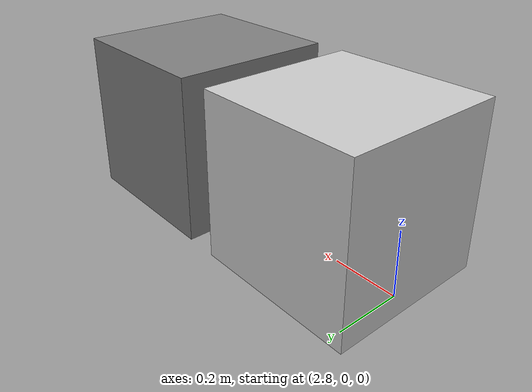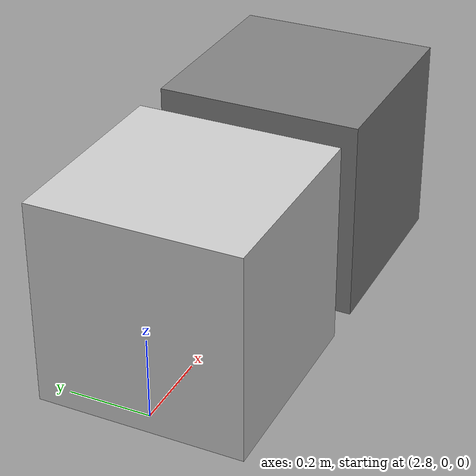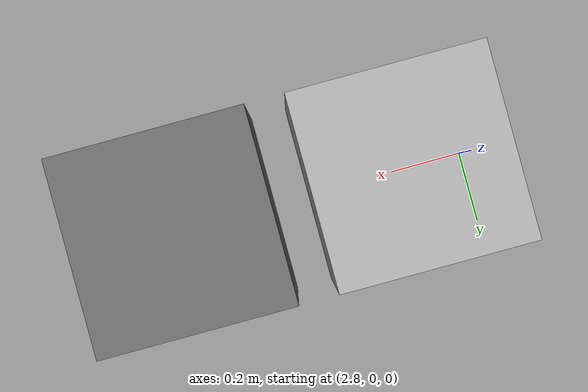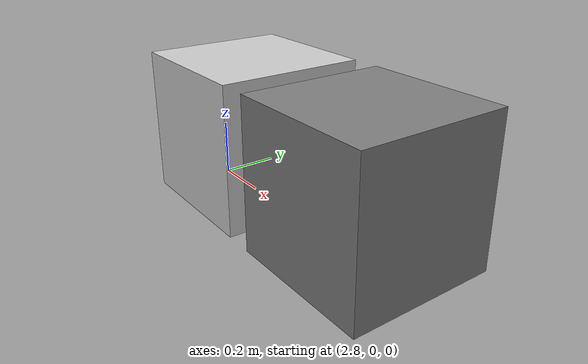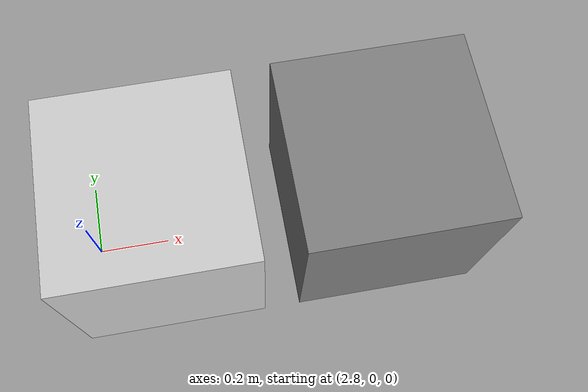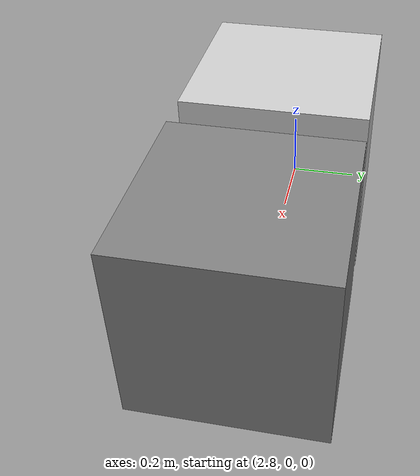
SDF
<?xml version="1.0" ?>
<sdf version="1.6">
  <world name="camera_depth_occlusion">
    <scene>
      <ambient>0.7 0.7 0.7 1</ambient>
      <background>0.5 0.5 0.5 1</background>
    </scene>

    <!-- Задний куб (неподвижный) -->
    <model name="back_cube">
      <pose>3.6 0.0 0.25 0 0 0</pose>
      <static>true</static>
      <link name="link">
        <collision name="collision">
          <geometry><box><size>0.5 0.5 0.5</size></box></geometry>
        </collision>
        <visual name="visual">
          <geometry><box><size>0.5 0.5 0.5</size></box></geometry>
          <material>
            <ambient>0.5 0.5 0.5 1</ambient>
            <diffuse>0.5 0.5 0.5 1</diffuse>
          </material>
        </visual>
      </link>
    </model>

    <!-- Передний куб (перемещаемый) -->
    <model name="front_cube">
      <pose>3.0 0.0 0.25 0 0 0</pose>
      <static>false</static>
      <link name="link">
        <gravity>false</gravity>
        <collision name="collision">
          <geometry><box><size>0.5 0.5 0.5</size></box></geometry>
        </collision>
        <visual name="visual">
          <geometry><box><size>0.5 0.5 0.5</size></box></geometry>
          <material>
            <ambient>0.8 0.8 0.8 1</ambient>
            <diffuse>0.8 0.8 0.8 1</diffuse>
          </material>
        </visual>
      </link>
    </model>
  </world>
</sdf>
